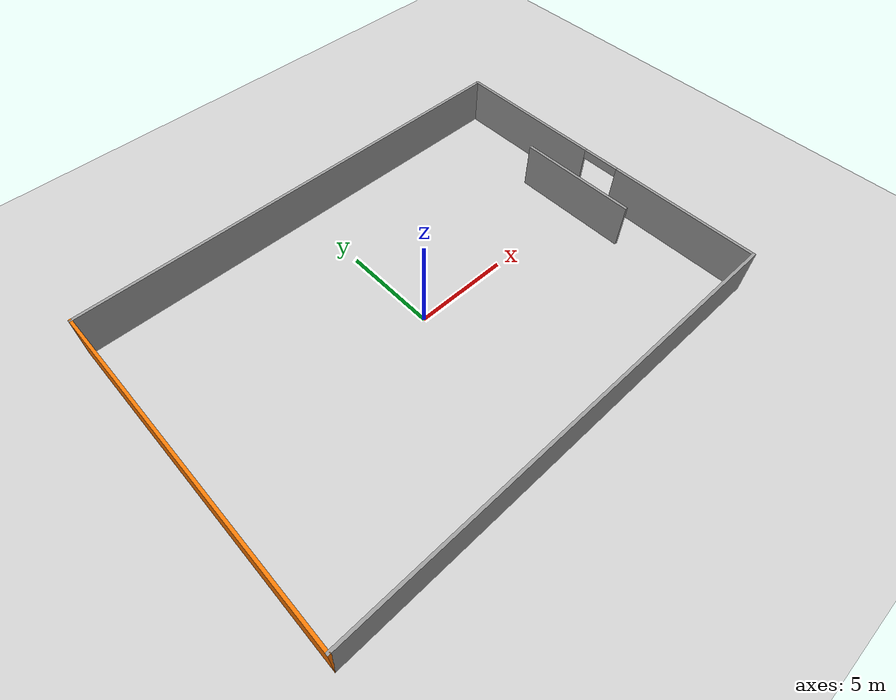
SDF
<sdf version="1.6">
 <world name="default">
  <light name="sun" type="directional">
   <pose>0 0 10 0 -0 0</pose>
   <diffuse>0.8 0.8 0.8 1</diffuse>
   <specular>0.2 0.2 0.2 1</specular>
   <attenuation>
    <range>1000</range>
    <constant>0.9</constant>
    <linear>0.01</linear>
    <quadratic>0.001</quadratic>
   </attenuation>
   <direction>-0.5 0.1 -0.9</direction>
  </light>
  <model name="ground_plane">
   <static>1</static>
   <link name="link">
    <collision name="collision">
     <geometry><plane><normal>0 0 1</normal><size>100 100</size></plane></geometry>
     <surface><friction><ode><mu>100</mu><mu2>50</mu2></ode></friction></surface>
    </collision>
    <visual name="visual">
     <cast_shadows>0</cast_shadows>
     <geometry><plane><normal>0 0 1</normal><size>100 100</size></plane></geometry>
     <material>
      <script><uri>file://media/materials/scripts/gazebo.material</uri><name>Gazebo/Grey</name></script>
     </material>
    </visual>
   </link>
  </model>
  <gravity>0 0 -9.8</gravity>
  <magnetic_field>6e-06 2.3e-05 -4.2e-05</magnetic_field>
  <atmosphere type="adiabatic"/>
  <physics name="default_physics" default="0" type="ode">
   <max_step_size>0.001</max_step_size>
   <real_time_factor>1</real_time_factor>
   <real_time_update_rate>1000</real_time_update_rate>
  </physics>
  <scene><ambient>0.4 0.4 0.4 1</ambient><background>0.7 0.7 0.7 1</background><shadows>1</shadows></scene>
  <spherical_coordinates>
   <surface_model>EARTH_WGS84</surface_model>
   <latitude_deg>0</latitude_deg>
   <longitude_deg>0</longitude_deg>
   <elevation>0</elevation>
   <heading_deg>0</heading_deg>
  </spherical_coordinates>
  <model name="restaurant">
   <link name="Wall_10">
    <pose>-12.425 -0.0001 0 0 0 -1.5708</pose>
    <visual name="Wall_10_Visual">
     <pose>0 0 1.25 0 -0 0</pose>
     <geometry><box><size>18 0.15 2.5</size></box></geometry>
     <material>
      <script><uri>file://media/materials/scripts/gazebo.material</uri><name>Gazebo/Grey</name></script>
      <ambient>0.996078 0.47451 0.0196078 1</ambient>
      <shader type="pixel"/>
      <diffuse>0.7 0.7 0.7 1</diffuse>
      <specular>0.01 0.01 0.01 1</specular>
      <emissive>0 0 0 1</emissive>
     </material>
     <meta><layer>0</layer></meta>
    </visual>
    <collision name="Wall_10_Collision">
     <pose>0 0 1.25 0 -0 0</pose>
     <geometry><box><size>18 0.15 2.5</size></box></geometry>
     <surface>
      <friction>
       <ode><mu>1</mu><mu2>1</mu2><fdir1>0 0 0</fdir1><slip1>0</slip1><slip2>0</slip2></ode>
       <torsional>
        <coefficient>1</coefficient>
        <patch_radius>0</patch_radius>
        <surface_radius>0</surface_radius>
        <use_patch_radius>1</use_patch_radius>
        <ode><slip>0</slip></ode>
       </torsional>
      </friction>
      <bounce><restitution_coefficient>0</restitution_coefficient><threshold>1e+06</threshold></bounce>
      <contact>
       <collide_without_contact>0</collide_without_contact>
       <collide_without_contact_bitmask>1</collide_without_contact_bitmask>
       <collide_bitmask>1</collide_bitmask>
       <ode>
        <soft_cfm>0</soft_cfm>
        <soft_erp>0.2</soft_erp>
        <kp>1e+13</kp>
        <kd>1</kd>
        <max_vel>0.01</max_vel>
        <min_depth>0</min_depth>
       </ode>
       <bullet>
        <split_impulse>1</split_impulse>
        <split_impulse_penetration_threshold>-0.01</split_impulse_penetration_threshold>
        <soft_cfm>0</soft_cfm>
        <soft_erp>0.2</soft_erp>
        <kp>1e+13</kp>
        <kd>1</kd>
       </bullet>
      </contact>
     </surface>
    </collision>
   </link>
   <link name="Wall_12">
    <pose>-1e-06 -8.9251 0 0 -0 0</pose>
    <visual name="Wall_12_Visual">
     <pose>0 0 1.25 0 -0 0</pose>
     <geometry><box><size>25 0.15 2.5</size></box></geometry>
     <material>
      <script><uri>file://media/materials/scripts/gazebo.material</uri><name>Gazebo/Grey</name></script>
      <ambient>1 1 1 1</ambient>
      <shader type="pixel"/>
      <diffuse>0.7 0.7 0.7 1</diffuse>
      <specular>0.01 0.01 0.01 1</specular>
      <emissive>0 0 0 1</emissive>
     </material>
     <meta><layer>0</layer></meta>
    </visual>
    <collision name="Wall_12_Collision">
     <pose>0 0 1.25 0 -0 0</pose>
     <geometry><box><size>25 0.15 2.5</size></box></geometry>
     <surface>
      <friction>
       <ode><mu>1</mu><mu2>1</mu2><fdir1>0 0 0</fdir1><slip1>0</slip1><slip2>0</slip2></ode>
       <torsional>
        <coefficient>1</coefficient>
        <patch_radius>0</patch_radius>
        <surface_radius>0</surface_radius>
        <use_patch_radius>1</use_patch_radius>
        <ode><slip>0</slip></ode>
       </torsional>
      </friction>
      <bounce><restitution_coefficient>0</restitution_coefficient><threshold>1e+06</threshold></bounce>
      <contact>
       <collide_without_contact>0</collide_without_contact>
       <collide_without_contact_bitmask>1</collide_without_contact_bitmask>
       <collide_bitmask>1</collide_bitmask>
       <ode>
        <soft_cfm>0</soft_cfm>
        <soft_erp>0.2</soft_erp>
        <kp>1e+13</kp>
        <kd>1</kd>
        <max_vel>0.01</max_vel>
        <min_depth>0</min_depth>
       </ode>
       <bullet>
        <split_impulse>1</split_impulse>
        <split_impulse_penetration_threshold>-0.01</split_impulse_penetration_threshold>
        <soft_cfm>0</soft_cfm>
        <soft_erp>0.2</soft_erp>
        <kp>1e+13</kp>
        <kd>1</kd>
       </bullet>
      </contact>
     </surface>
    </collision>
   </link>
   <link name="Wall_14">
    <pose>12.425 1e-05 0 0 -0 1.5708</pose>
    <visual name="Wall_14_Visual_1">
     <pose>4.99359 0 1.25 0 -0 0</pose>
     <geometry><box><size>8.01282 0.15 2.5</size></box></geometry>
     <material>
      <script><uri>file://media/materials/scripts/gazebo.material</uri><name>Gazebo/Grey</name></script>
      <ambient>1 1 1 1</ambient>
      <shader type="pixel"/>
      <diffuse>0.7 0.7 0.7 1</diffuse>
      <specular>0.01 0.01 0.01 1</specular>
      <emissive>0 0 0 1</emissive>
     </material>
     <meta><layer>0</layer></meta>
    </visual>
    <visual name="Wall_14_Visual_2">
     <pose>-0.012825 0 2.25 0 -0 0</pose>
     <geometry><box><size>2 0.15 0.5</size></box></geometry>
     <material>
      <script><uri>file://media/materials/scripts/gazebo.material</uri><name>Gazebo/Grey</name></script>
      <ambient>1 1 1 1</ambient>
      <shader type="pixel"/>
      <diffuse>0.7 0.7 0.7 1</diffuse>
      <specular>0.01 0.01 0.01 1</specular>
      <emissive>0 0 0 1</emissive>
     </material>
     <meta><layer>0</layer></meta>
    </visual>
    <visual name="Wall_14_Visual_0">
     <pose>-5.00641 0 1.25 0 -0 0</pose>
     <geometry><box><size>7.98717 0.15 2.5</size></box></geometry>
     <material>
      <script><uri>file://media/materials/scripts/gazebo.material</uri><name>Gazebo/Grey</name></script>
      <ambient>1 1 1 1</ambient>
      <shader type="pixel"/>
      <diffuse>0.7 0.7 0.7 1</diffuse>
      <specular>0.01 0.01 0.01 1</specular>
      <emissive>0 0 0 1</emissive>
     </material>
     <meta><layer>0</layer></meta>
    </visual>
    <collision name="Wall_14_Collision_1">
     <pose>4.99359 0 1.25 0 -0 0</pose>
     <geometry><box><size>8.01282 0.15 2.5</size></box></geometry>
     <surface>
      <friction>
       <ode><mu>1</mu><mu2>1</mu2><fdir1>0 0 0</fdir1><slip1>0</slip1><slip2>0</slip2></ode>
       <torsional>
        <coefficient>1</coefficient>
        <patch_radius>0</patch_radius>
        <surface_radius>0</surface_radius>
        <use_patch_radius>1</use_patch_radius>
        <ode><slip>0</slip></ode>
       </torsional>
      </friction>
      <bounce><restitution_coefficient>0</restitution_coefficient><threshold>1e+06</threshold></bounce>
      <contact>
       <collide_without_contact>0</collide_without_contact>
       <collide_without_contact_bitmask>1</collide_without_contact_bitmask>
       <collide_bitmask>1</collide_bitmask>
       <ode>
        <soft_cfm>0</soft_cfm>
        <soft_erp>0.2</soft_erp>
        <kp>1e+13</kp>
        <kd>1</kd>
        <max_vel>0.01</max_vel>
        <min_depth>0</min_depth>
       </ode>
       <bullet>
        <split_impulse>1</split_impulse>
        <split_impulse_penetration_threshold>-0.01</split_impulse_penetration_threshold>
        <soft_cfm>0</soft_cfm>
        <soft_erp>0.2</soft_erp>
        <kp>1e+13</kp>
        <kd>1</kd>
       </bullet>
      </contact>
     </surface>
    </collision>
    <collision name="Wall_14_Collision_0">
     <pose>-5.00641 0 1.25 0 -0 0</pose>
     <geometry><box><size>7.98717 0.15 2.5</size></box></geometry>
     <surface>
      <friction>
       <ode><mu>1</mu><mu2>1</mu2><fdir1>0 0 0</fdir1><slip1>0</slip1><slip2>0</slip2></ode>
       <torsional>
        <coefficient>1</coefficient>
        <patch_radius>0</patch_radius>
        <surface_radius>0</surface_radius>
        <use_patch_radius>1</use_patch_radius>
        <ode><slip>0</slip></ode>
       </torsional>
      </friction>
      <bounce><restitution_coefficient>0</restitution_coefficient><threshold>1e+06</threshold></bounce>
      <contact>
       <collide_without_contact>0</collide_without_contact>
       <collide_without_contact_bitmask>1</collide_without_contact_bitmask>
       <collide_bitmask>1</collide_bitmask>
       <ode>
        <soft_cfm>0</soft_cfm>
        <soft_erp>0.2</soft_erp>
        <kp>1e+13</kp>
        <kd>1</kd>
        <max_vel>0.01</max_vel>
        <min_depth>0</min_depth>
       </ode>
       <bullet>
        <split_impulse>1</split_impulse>
        <split_impulse_penetration_threshold>-0.01</split_impulse_penetration_threshold>
        <soft_cfm>0</soft_cfm>
        <soft_erp>0.2</soft_erp>
        <kp>1e+13</kp>
        <kd>1</kd>
       </bullet>
      </contact>
     </surface>
    </collision>
    <collision name="Wall_14_Collision_2">
     <pose>-0.012825 0 2.25 0 -0 0</pose>
     <geometry><box><size>2 0.15 0.5</size></box></geometry>
     <surface>
      <friction>
       <ode><mu>1</mu><mu2>1</mu2><fdir1>0 0 0</fdir1><slip1>0</slip1><slip2>0</slip2></ode>
       <torsional>
        <coefficient>1</coefficient>
        <patch_radius>0</patch_radius>
        <surface_radius>0</surface_radius>
        <use_patch_radius>1</use_patch_radius>
        <ode><slip>0</slip></ode>
       </torsional>
      </friction>
      <bounce><restitution_coefficient>0</restitution_coefficient><threshold>1e+06</threshold></bounce>
      <contact>
       <collide_without_contact>0</collide_without_contact>
       <collide_without_contact_bitmask>1</collide_without_contact_bitmask>
       <collide_bitmask>1</collide_bitmask>
       <ode>
        <soft_cfm>0</soft_cfm>
        <soft_erp>0.2</soft_erp>
        <kp>1e+13</kp>
        <kd>1</kd>
        <max_vel>0.01</max_vel>
        <min_depth>0</min_depth>
       </ode>
       <bullet>
        <split_impulse>1</split_impulse>
        <split_impulse_penetration_threshold>-0.01</split_impulse_penetration_threshold>
        <soft_cfm>0</soft_cfm>
        <soft_erp>0.2</soft_erp>
        <kp>1e+13</kp>
        <kd>1</kd>
       </bullet>
      </contact>
     </surface>
    </collision>
   </link>
   <link name="Wall_16">
    <pose>10.5 0 0 0 0 -1.5708</pose>
    <inertial>
     <mass>1</mass>
     <inertia><ixx>1</ixx><ixy>0</ixy><ixz>0</ixz><iyy>1</iyy><iyz>0</iyz><izz>1</izz></inertia>
    </inertial>
    <visual name="Wall_16_Visual">
     <pose>0 0 1.25 0 -0 0</pose>
     <geometry><box><size>6.25 0.15 2.5</size></box></geometry>
     <material>
      <script><uri>file://media/materials/scripts/gazebo.material</uri><name>Gazebo/Grey</name></script>
      <ambient>1 1 1 1</ambient>
      <shader type="pixel"><normal_map>__default__</normal_map></shader>
      <diffuse>0.7 0.7 0.7 1</diffuse>
      <specular>0.01 0.01 0.01 1</specular>
      <emissive>0 0 0 1</emissive>
     </material>
     <meta><layer>0</layer></meta>
    </visual>
    <collision name="Wall_16_Collision">
     <pose>0 0 1.25 0 -0 0</pose>
     <geometry><box><size>6.25 0.15 2.5</size></box></geometry>
     <surface>
      <friction>
       <ode><mu>1</mu><mu2>1</mu2><fdir1>0 0 0</fdir1><slip1>0</slip1><slip2>0</slip2></ode>
       <torsional>
        <coefficient>1</coefficient>
        <patch_radius>0</patch_radius>
        <surface_radius>0</surface_radius>
        <use_patch_radius>1</use_patch_radius>
        <ode><slip>0</slip></ode>
       </torsional>
      </friction>
      <bounce><restitution_coefficient>0</restitution_coefficient><threshold>1e+06</threshold></bounce>
      <contact>
       <collide_without_contact>0</collide_without_contact>
       <collide_without_contact_bitmask>1</collide_without_contact_bitmask>
       <collide_bitmask>1</collide_bitmask>
       <ode>
        <soft_cfm>0</soft_cfm>
        <soft_erp>0.2</soft_erp>
        <kp>1e+13</kp>
        <kd>1</kd>
        <max_vel>0.01</max_vel>
        <min_depth>0</min_depth>
       </ode>
       <bullet>
        <split_impulse>1</split_impulse>
        <split_impulse_penetration_threshold>-0.01</split_impulse_penetration_threshold>
        <soft_cfm>0</soft_cfm>
        <soft_erp>0.2</soft_erp>
        <kp>1e+13</kp>
        <kd>1</kd>
       </bullet>
      </contact>
     </surface>
    </collision>
   </link>
   <link name="Wall_8">
    <pose>1e-06 8.925 0 0 0 -3.14159</pose>
    <visual name="Wall_8_Visual">
     <pose>0 0 1.25 0 -0 0</pose>
     <geometry><box><size>25 0.15 2.5</size></box></geometry>
     <material>
      <script><uri>file://media/materials/scripts/gazebo.material</uri><name>Gazebo/Grey</name></script>
      <ambient>1 1 1 1</ambient>
      <shader type="pixel"/>
      <diffuse>0.7 0.7 0.7 1</diffuse>
      <specular>0.01 0.01 0.01 1</specular>
      <emissive>0 0 0 1</emissive>
     </material>
     <meta><layer>0</layer></meta>
    </visual>
    <collision name="Wall_8_Collision">
     <pose>0 0 1.25 0 -0 0</pose>
     <geometry><box><size>25 0.15 2.5</size></box></geometry>
     <surface>
      <friction>
       <ode><mu>1</mu><mu2>1</mu2><fdir1>0 0 0</fdir1><slip1>0</slip1><slip2>0</slip2></ode>
       <torsional>
        <coefficient>1</coefficient>
        <patch_radius>0</patch_radius>
        <surface_radius>0</surface_radius>
        <use_patch_radius>1</use_patch_radius>
        <ode><slip>0</slip></ode>
       </torsional>
      </friction>
      <bounce><restitution_coefficient>0</restitution_coefficient><threshold>1e+06</threshold></bounce>
      <contact>
       <collide_without_contact>0</collide_without_contact>
       <collide_without_contact_bitmask>1</collide_without_contact_bitmask>
       <collide_bitmask>1</collide_bitmask>
       <ode>
        <soft_cfm>0</soft_cfm>
        <soft_erp>0.2</soft_erp>
        <kp>1e+13</kp>
        <kd>1</kd>
        <max_vel>0.01</max_vel>
        <min_depth>0</min_depth>
       </ode>
       <bullet>
        <split_impulse>1</split_impulse>
        <split_impulse_penetration_threshold>-0.01</split_impulse_penetration_threshold>
        <soft_cfm>0</soft_cfm>
        <soft_erp>0.2</soft_erp>
        <kp>1e+13</kp>
        <kd>1</kd>
       </bullet>
      </contact>
     </surface>
    </collision>
   </link>
   <static>1</static>
  </model>
 </world>
</sdf>
